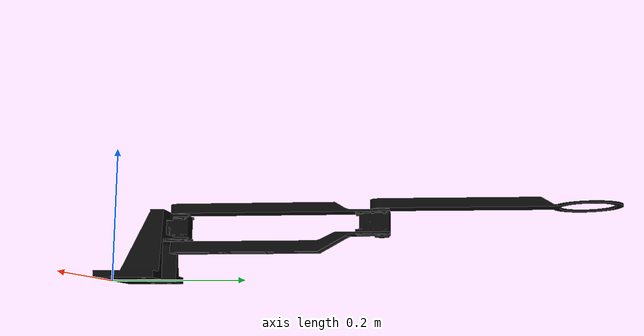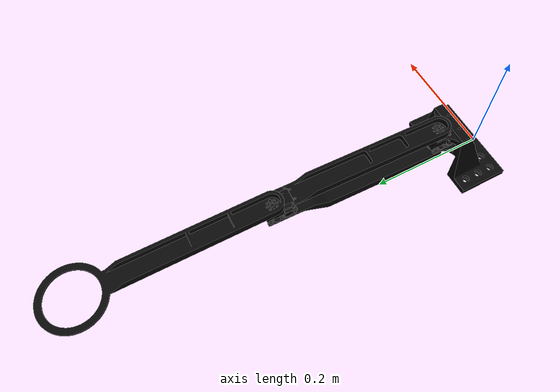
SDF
<?xml version="1.0" ?>
<sdf version='1.9'>
  <model name='project_robot'>
    <link name='armbasemount'>
      <inertial>
        <pose>6.251875546689009e-06 0.06186406951293352 0.0428628931354464 0 0 0</pose>
        <mass>0.29051270000000001</mass>
        <inertia>
          <ixx>0.00055875421740281869</ixx>
          <ixy>-3.4062005332006259e-08</ixy>
          <ixz>-7.3112193284978159e-08</ixz>
          <iyy>0.0006971616844175366</iyy>
          <iyz>-0.00020423169635380809</iyz>
          <izz>0.00059518919063912654</izz>
        </inertia>
      </inertial>
      <collision name='armbasemount_collision'>
        <pose>0 0.1156 0.06 1.5708 0 -1.5708</pose>
        <geometry>
          <mesh>
            <scale>1 1 1</scale>
            <uri>package://robot_desc/TrueRobot/assets/armbasemount.stl</uri>
          </mesh>
        </geometry>
      </collision>
      <collision name='armbasemount_fixed_joint_lump__dynamixelmotor_withhorn_collision_1'>
        <pose>6.372530999999999e-34 0.1036 0.07803 8.57655e-33 -1.2326e-32 0</pose>
        <geometry>
          <mesh>
            <scale>1 1 1</scale>
            <uri>package://robot_desc/TrueRobot/assets/dynamixelmotor_withhorn.stl</uri>
          </mesh>
        </geometry>
      </collision>
      <visual name='armbasemount_visual'>
        <pose>0 0.1156 0.06 1.5708 0 -1.5708</pose>
        <geometry>
          <mesh>
            <scale>1 1 1</scale>
            <uri>package://robot_desc/TrueRobot/assets/armbasemount.stl</uri>
          </mesh>
        </geometry>
        <material>
          <diffuse>0.03 0.03 0.03 1</diffuse>
          <ambient>0.03 0.03 0.03 1</ambient>
        </material>
      </visual>
      <visual name='armbasemount_fixed_joint_lump__dynamixelmotor_withhorn_visual_1'>
        <pose>6.372530999999999e-34 0.1036 0.07803 8.57655e-33 -1.2326e-32 0</pose>
        <geometry>
          <mesh>
            <scale>1 1 1</scale>
            <uri>package://robot_desc/TrueRobot/assets/dynamixelmotor_withhorn.stl</uri>
          </mesh>
        </geometry>
        <material>
          <diffuse>0.03 0.03 0.03 1</diffuse>
          <ambient>0.03 0.03 0.03 1</ambient>
        </material>
      </visual>
    </link>
    <joint name='shoulder' type='revolute'>
      <pose relative_to='armbasemount'>3.845701e-34 0.1036 0.09853000000000001 3.14159 -1.2326e-32 0</pose>
      <parent>armbasemount</parent>
      <child>shoulderlink</child>
      <axis>
        <xyz>0 0 -1</xyz>
        <limit>
          <lower>-1.5708</lower>
          <upper>1.5708</upper>
          <effort>1000</effort>
          <velocity>10000</velocity>
        </limit>
        <dynamics>
          <damping>0.0</damping>      <!-- Explicitly set -->
          <friction>0.0</friction>
          <spring_reference>0</spring_reference>
          <spring_stiffness>0</spring_stiffness>
        </dynamics>
      </axis>
    </joint>
    <link name='shoulderlink'>
      <pose relative_to='shoulder'>0 0 0 0 0 0</pose>
      <inertial>
        <pose>0.003645512018805132 -0.1863316300059878 0.01986712454381451 0 0 0</pose>
        <mass>0.20337669999999999</mass>
        <inertia>
          <ixx>0.0022488945478882989</ixx>
          <ixy>4.1720371291662997e-05</ixy>
          <ixz>1.6568543822297811e-06</ixz>
          <iyy>0.0001204273050543394</iyy>
          <iyz>-8.3976955029445538e-05</iyz>
          <izz>0.0021781180081586961</izz>
        </inertia>
      </inertial>
      <collision name='shoulderlink_collision'>
        <pose>0.00351367 -0.169801 4.16334e-17 -3.14159 -2.117582368135751e-22 -1.55128</pose>
        <geometry>
          <mesh>
            <scale>1 1 1</scale>
            <uri>package://robot_desc/TrueRobot/assets/combinedshoulder.stl</uri>
          </mesh>
        </geometry>
      </collision>
      <collision name='shoulderlink_collision_1'>
        <pose>0.00351367 -0.169801 4.16334e-17 -3.14159 -2.117582368135751e-22 -1.55128</pose>
        <geometry>
          <mesh>
            <scale>1 1 1</scale>
            <uri>package://robot_desc/TrueRobot/assets/bottomshoulderlink.stl</uri>
          </mesh>
        </geometry>
      </collision>
      <collision name='shoulderlink_fixed_joint_lump__dynamixelmotor_withhorn_2_collision_2'>
        <pose>0.00581549619397911 -0.297943249636601 0.015 3.14159 -1.323488980084844e-23 0.01952000000000008</pose>
        <geometry>
          <mesh>
            <scale>1 1 1</scale>
            <uri>package://robot_desc/TrueRobot/assets/dynamixelmotor_withhorn.stl</uri>
          </mesh>
        </geometry>
      </collision>
      <visual name='shoulderlink_visual'>
        <pose>0.00351367 -0.169801 4.16334e-17 -3.14159 -2.117582368135751e-22 -1.55128</pose>
        <geometry>
          <mesh>
            <scale>1 1 1</scale>
            <uri>package://robot_desc/TrueRobot/assets/combinedshoulder.stl</uri>
          </mesh>
        </geometry>
        <material>
          <diffuse>0.03 0.03 0.03 1</diffuse>
          <ambient>0.03 0.03 0.03 1</ambient>
        </material>
      </visual>
      <visual name='shoulderlink_visual_1'>
        <pose>0.00351367 -0.169801 4.16334e-17 -3.14159 -2.117582368135751e-22 -1.55128</pose>
        <geometry>
          <mesh>
            <scale>1 1 1</scale>
            <uri>package://robot_desc/TrueRobot/assets/bottomshoulderlink.stl</uri>
          </mesh>
        </geometry>
        <material>
          <diffuse>0.03 0.03 0.03 1</diffuse>
          <ambient>0.03 0.03 0.03 1</ambient>
        </material>
      </visual>
      <visual name='shoulderlink_fixed_joint_lump__dynamixelmotor_withhorn_2_visual_2'>
        <pose>0.00581549619397911 -0.297943249636601 0.015 3.14159 -1.323488980084844e-23 0.01952000000000008</pose>
        <geometry>
          <mesh>
            <scale>1 1 1</scale>
            <uri>package://robot_desc/TrueRobot/assets/dynamixelmotor_withhorn.stl</uri>
          </mesh>
        </geometry>
        <material>
          <diffuse>0.03 0.03 0.03 1</diffuse>
          <ambient>0.03 0.03 0.03 1</ambient>
        </material>
      </visual>
    </link>
    <joint name='elbow' type='revolute'>
      <pose relative_to='shoulderlink'>-1.094615120878888e-06 -0.2979999999979897 -0.0055 3.14159 0 -1.5708</pose>
      <parent>shoulderlink</parent>
      <child>hooplink</child>
      <axis>
        <xyz>0 0 1</xyz>
        <limit>
          <lower>-2.2939099999999999</lower>
          <upper>2.2939099999999999</upper>
          <effort>1000</effort>
          <velocity>10000</velocity>
        </limit>
        <dynamics>
          <damping>0.0</damping>      <!-- Explicitly set -->
          <friction>0.0</friction>
          <spring_reference>0</spring_reference>
          <spring_stiffness>0</spring_stiffness>
        </dynamics>
      </axis>
    </joint>
    <link name='hooplink'>
      <pose relative_to='elbow'>0 0 0 0 0 0</pose>
      <inertial>
        <pose>0.1358200027684566 -2.364220297380264e-05 0.004826469969201467 0 0 0</pose>
        <mass>0.059303801000000003</mass>
        <inertia>
          <ixx>1.682160000336709e-05</ixx>
          <ixy>2.321110289544231e-07</ixy>
          <ixz>5.9135702998698312e-06</ixz>
          <iyy>0.00052000702695840844</iyy>
          <iyz>-4.6639603221122238e-09</iyz>
          <izz>0.00053478302695510313</izz>
        </inertia>
      </inertial>
      <collision name='hooplink_collision'>
        <pose>0.169838 0.1698 0 0 2.18953e-47 1.73472e-18</pose>
        <geometry>
          <mesh>
            <scale>1 1 1</scale>
            <uri>package://robot_desc/TrueRobot/assets/hooplink.stl</uri>
          </mesh>
        </geometry>
      </collision>
      <visual name='hooplink_visual'>
        <pose>0.169838 0.1698 0 0 2.18953e-47 1.73472e-18</pose>
        <geometry>
          <mesh>
            <scale>1 1 1</scale>
            <uri>package://robot_desc/TrueRobot/assets/hooplink.stl</uri>
          </mesh>
        </geometry>
        <material>
          <diffuse>0.03 0.03 0.03 1</diffuse>
          <ambient>0.03 0.03 0.03 1</ambient>
        </material>
      </visual>
    </link>
    <frame name='shouldermotor' attached_to='armbasemount'>
      <pose>0 0.1036 0.10388 0 -0 0</pose>
    </frame>
    <frame name='dynamixelmotor_withhorn' attached_to='shouldermotor'/>
    <frame name='elbowmotor' attached_to='shoulderlink'>
      <pose>0 -0 -0.003 0 -0 -1.55128</pose>
    </frame>
    <frame name='dynamixelmotor_withhorn_2' attached_to='elbowmotor'/>
    <frame name='EEframe_frame' attached_to='hooplink'>
      <pose>0.3 -0.0002 0.003 0 0 0</pose>
    </frame>
    <frame name='EEframe' attached_to='EEframe_frame'/>

    <!-- Plug-in for velocity control -->
    <plugin
      filename="gz-sim-joint-controller-system"
      name="gz::sim::systems::JointController">
      <joint_name>shoulder</joint_name>
      <topic>velS</topic>
      <p_gain>1</p_gain>
      <i_gain>0</i_gain>
      <d_gain>0</d_gain>
      <initial_velocity>0</initial_velocity>
    </plugin>

    <plugin
      filename="gz-sim-joint-controller-system"
      name="gz::sim::systems::JointController">
      <joint_name>elbow</joint_name>
      <topic>velE</topic>
      <p_gain>1</p_gain>
      <i_gain>0</i_gain>
      <d_gain>0</d_gain>
      <initial_velocity>0</initial_velocity>
    </plugin>

    <!-- Plug in for joint reading -->
    <plugin
      filename="gz-sim-joint-state-publisher-system"
      name="gz::sim::systems::JointStatePublisher">
      <topic>joint_state</topic>
      <joint_name>shoulder</joint_name>
      <joint_name>elbow</joint_name>
      <update_rate>20</update_rate>
    </plugin>

  </model>
</sdf>
